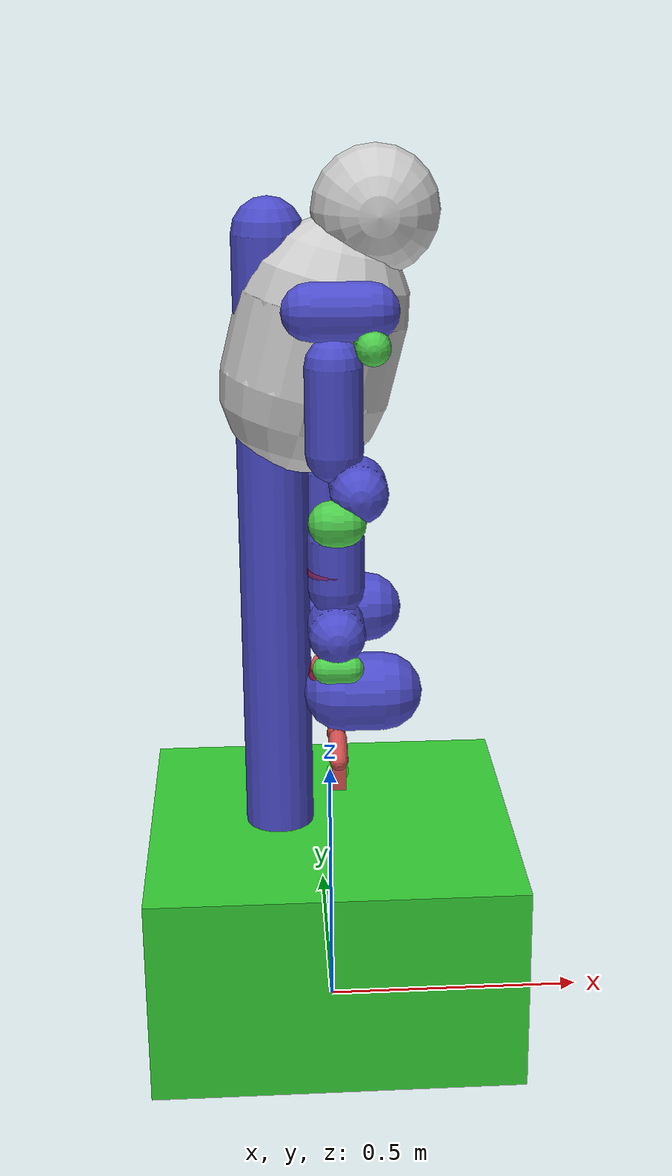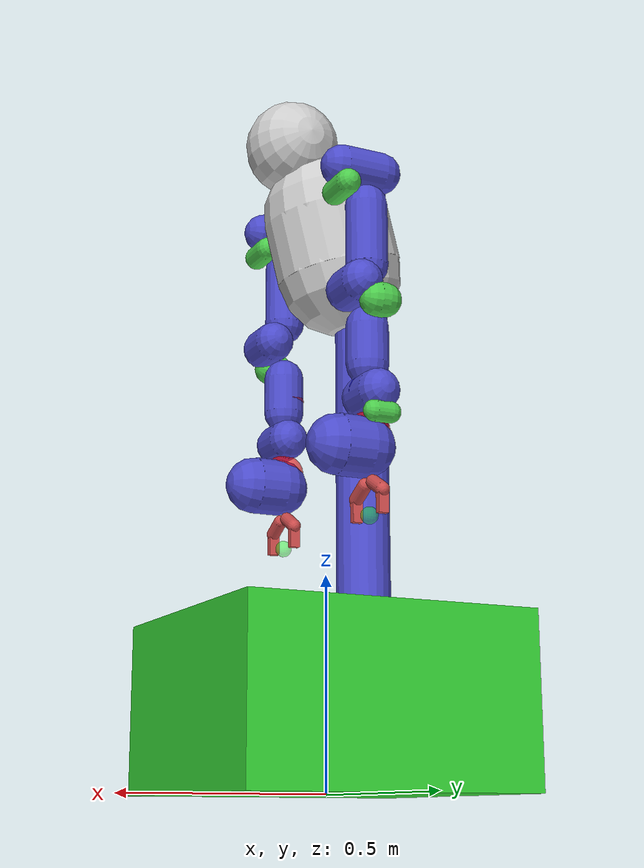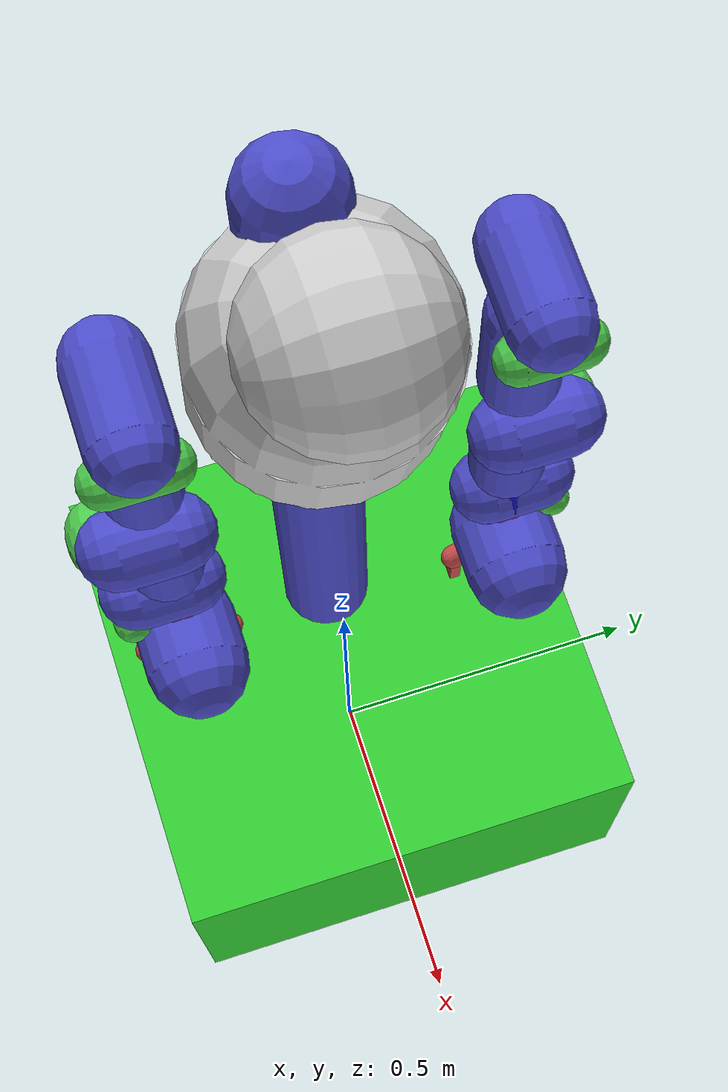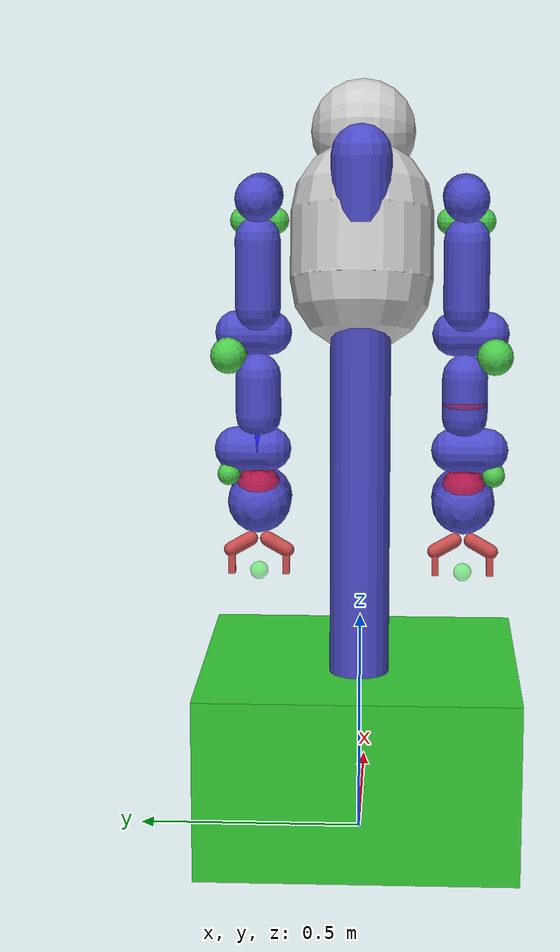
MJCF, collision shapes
<mujoco model="ffw_bg2">
  <compiler angle="radian" meshdir="assets" autolimits="true"/>

  <option integrator="Euler"
          cone="elliptic"
          timestep="0.002"
          solver="Newton"
          iterations="50"
          ls_iterations="20"/>

  <!--
    Default classes:
    1) "robot" for main body joints
    2) "hand" for the gripper joints
    3) "slider" specifically for the linear slide joint
  -->
  <default>

    <geom margin="0.30" gap="0.0" />

    <!-- Robot default -->
    <default class="robot">
      <!-- Increase armature or damping if you want more stability -->
      <joint range="-3.14 3.14" armature="0.5" damping="100.0" />
      <position kp="3000" forcerange="-200.0 200.0" ctrlrange="-3.14 3.14"/>
    </default>

    <!-- Hand (gripper) default -->
    <default class="gripper">
      <joint armature="0.1" damping="10.0"/>
      <position kp="1000" forcerange="-100 100"/>
    </default>

    <!-- Slider default (for the lift_joint) -->
    <default class="slider">
      <!--
        You can tune armature/damping further for the slide if necessary.
        'range' below sets the permissible linear travel.
      -->
      <joint type="slide" range="-0.5 0.0" armature="10.0" damping="1000.0" frictionloss="100.0" />
      <position kp="10000" forcerange="-1000 1000" ctrlrange="-0.5 0.0"/>
    </default>
  </default>

  <!-- Assets -->
  <asset>
    <mesh name="base_mobile_assy" file="ffw_bg2/base_mobile_assy.stl" scale="0.001 0.001 0.001"/>
    <mesh name="body_arm_assy" file="ffw_bg2/body_arm_assy.stl" scale="0.001 0.001 0.001"/>
    <mesh name="head_link1" file="ffw_bg2/head_link1.stl" scale="0.001 0.001 0.001"/>
    <mesh name="head_link2" file="ffw_bg2/head_link2.stl" scale="0.001 0.001 0.001"/>
    <mesh name="arm_l_link1" file="ffw_bg2/arm_l_link1.stl" scale="0.001 0.001 0.001"/>
    <mesh name="arm_l_link2" file="ffw_bg2/arm_l_link2.stl" scale="0.001 0.001 0.001"/>
    <mesh name="arm_l_link3" file="ffw_bg2/arm_l_link3.stl" scale="0.001 0.001 0.001"/>
    <mesh name="arm_l_link4" file="ffw_bg2/arm_l_link4.stl" scale="0.001 0.001 0.001"/>
    <mesh name="arm_l_link5" file="ffw_bg2/arm_l_link5.stl" scale="0.001 0.001 0.001"/>
    <mesh name="arm_l_link6" file="ffw_bg2/arm_l_link6.stl" scale="0.001 0.001 0.001"/>
    <mesh name="arm_l_link7" file="ffw_bg2/arm_l_link7.stl" scale="0.001 0.001 0.001"/>
    <mesh name="arm_r_link1" file="ffw_bg2/arm_r_link1.stl" scale="0.001 0.001 0.001"/>
    <mesh name="arm_r_link2" file="ffw_bg2/arm_r_link2.stl" scale="0.001 0.001 0.001"/>
    <mesh name="arm_r_link3" file="ffw_bg2/arm_r_link3.stl" scale="0.001 0.001 0.001"/>
    <mesh name="arm_r_link4" file="ffw_bg2/arm_r_link4.stl" scale="0.001 0.001 0.001"/>
    <mesh name="arm_r_link5" file="ffw_bg2/arm_r_link5.stl" scale="0.001 0.001 0.001"/>
    <mesh name="arm_r_link6" file="ffw_bg2/arm_r_link6.stl" scale="0.001 0.001 0.001"/>
    <mesh name="arm_r_link7" file="ffw_bg2/arm_r_link7.stl" scale="0.001 0.001 0.001"/>
    <mesh name="base" file="rh_p12_rn/base.stl" scale="0.001 0.001 0.001"/>
    <mesh name="r1" file="rh_p12_rn/r1.stl" scale="0.001 0.001 0.001"/>
    <mesh name="r2" file="rh_p12_rn/r2.stl" scale="0.001 0.001 0.001"/>
    <mesh name="l1" file="rh_p12_rn/l1.stl" scale="0.001 0.001 0.001"/>
    <mesh name="l2" file="rh_p12_rn/l2.stl" scale="0.001 0.001 0.001"/>
  </asset>

  <keyframe>
    <!-- Default pose: lift_joint at mid-height (0.125 out of 0-0.25 range) -->
    <key name="home" qpos=" 0.0 0.0 0.0 0.0 0.0 0.0 0.0 0.0 0.0 0.0 0.0 0.0 0.0 0.0 0.0 0.0 0.0 0.0 0.0 "/>
  </keyframe>

  <keyframe>
    <key name="free_hand" qpos=" -1.57 0.0 0.0 0.0 0.0 0.0 0.0 0.0 -1.57 0.0 0.0 0.0 0.0 0.0 0.0 0.0 0.0 0.0 0.0 "/>
  </keyframe>

  <worldbody>
    <geom type="mesh" rgba="0.2 0.2 0.2 0.5" mesh="base_mobile_assy" contype="0" conaffinity="0"/>
    <body name="pole" pos="-0.0984306 0 0.9313797">
    <geom type="capsule"
        pos="-0.0 0 0.0"  size="0.065 0.60" rgba="0.3 0.3 0.8 0.6" contype="1" conaffinity="376"/>
    </body>

    <body name="drive" pos="0 0 0.2">
    <geom type="box" size="0.35 0.35 0.2" rgba="0.2 0.8 0.2 0.5" contype="1" conaffinity="376"/>
    </body>

    <!-- arm_base_link with separate "slider" default class -->
    <body name="arm_base_link" pos="0.0055 0 1.4316">
      <!-- Joint with slider class -->
      <inertial pos="-0.0460732 -2.28101e-05 -0.0270208" quat="0.295276 0.295528 -0.642514 0.642379" mass="8.72176" diaginertia="0.106112 0.0836519 0.0576143"/>
      <joint name="lift_joint" class="slider" pos="0 0 0" axis="0 0 1" type="slide"/>
      <geom type="mesh" rgba="1 1 1 1" mesh="body_arm_assy" contype="0" conaffinity="0"/>
      <geom type="capsule" size="0.155 0.075" pos="-0.025 0 -0.1" quat="0.9921977 0 0.1246747 0" rgba="0.8 0.8 0.8 0.2" contype="1" conaffinity="376"/>

      <!-- Head -->
      <body name="head_link1" pos="0.0494878 0 0.102123">
        <inertial pos="-0.00732988 0 0.0434363" quat="0.688381 -0.161651 -0.161651 0.688381" mass="0.139473" diaginertia="6.54445e-05 5.99779e-05 4.75755e-05"/>
        <joint name="head_joint1" class="robot" pos="0 0 0" axis="0 1 0" range="-0.2317 0.6951"/>
        <geom type="mesh" rgba="0.2 0.2 0.2 1.0" mesh="head_link1" contype="0" conaffinity="0"/>

        <body name="head_link2" pos="0.0365694 0 0.0563797">
          <inertial pos="0.00877907 -8.40392e-05 0.0425432" quat="0.653422 0.653616 0.269949 -0.270098" mass="0.145078" diaginertia="0.000186994 0.000179978 2.28387e-05"/>
          <joint name="head_joint2" class="robot" pos="0 0 0" axis="0 0 1" range="-0.6 0.6"/>
          <geom type="mesh" rgba="1 1 1 0.4" mesh="head_link2" contype="0" conaffinity="0"/>
          <geom type="sphere" size="0.115" pos="0.00 0 -0.02" quat="0.7071068 0.7071068 0 0" rgba="0.8 0.8 0.8 0.3" contype="1" conaffinity="376"/>

        </body>
      </body>

      <!-- Left arm -->
      <body name="arm_l_link1" pos="0 0.1045 0">
        <inertial pos="0.0162539 0.115097 0.000116015" quat="-0.229615 0.677745 0.212586 0.665391" mass="1.93395" diaginertia="0.00305502 0.0027509 0.00221577"/>
        <joint name="arm_l_joint1" class="robot" pos="0 0 0" axis="0 1 0" range="-2.35619 0.78539"/>
        <geom type="mesh" rgba="0.2 0.2 0.2 1" mesh="arm_l_link1" contype="0" conaffinity="0"/>
        <geom type="capsule" size="0.05 0.05" pos="0.0125 0.12 0" quat="0.707107 0 0.707107 0"
        rgba="0.3 0.3 0.8 0.5" contype="2" conaffinity="368"/>

        <body name="arm_l_link2" pos="0 0.123 0">
          <inertial pos="0.00909681 -0.000105504 -0.144033" quat="0.692968 0.108459 0.106285 0.704795" mass="2.12414" diaginertia="0.0108537 0.0106882 0.00241736"/>
          <joint name="arm_l_joint2" class="robot" pos="0 0 0" axis="1 0 0" range="0.0 3.14"/>
          <geom type="mesh" rgba="0.2 0.2 0.2 1" mesh="arm_l_link2" contype="0" conaffinity="0"/>
          <geom type="capsule" size="0.05 0.075" pos="0.0 0.0 -0.165" quat="1 0 0 0"
          rgba="0.3 0.3 0.8 0.3" contype="2" conaffinity="368"/>

          <geom type="capsule" size="0.03 0.035" pos="0.065 0.0 -0.055" quat="0.707107 0.707107 0 0"
          rgba="0.3 0.8 0.3 0.3" contype="2" conaffinity="368"/>

          <body name="arm_l_link3" pos="0 0 -0.165">
            <inertial pos="2.51092e-05 0.0179472 -0.108757" quat="0.894344 0.447371 -0.000598238 0.00281074" mass="1.40774" diaginertia="0.00193356 0.00173187 0.00129028"/>
            <joint name="arm_l_joint3" class="robot" pos="0 0 0" axis="0 0 1" range="-1.57 1.57"/>
            <geom type="mesh" rgba="0.2 0.2 0.2 1" mesh="arm_l_link3" contype="0" conaffinity="0"/>
            <geom type="capsule" size="0.05 0.035" pos="0.04 0.0125 -0.135" quat="0.707107 0.707107 0 0"
            rgba="0.3 0.3 0.8 0.3" contype="2" conaffinity="368"/>

            <site name="left_UA_site" type="sphere" size="0.03" pos="0.0 0 -0.275" quat="1 0 0 0" rgba="1.0 0.0 1.0 0.6"/>

            <body name="arm_l_link4" pos="0.041004 0 -0.135">
              <inertial pos="-4.39703e-05 0.00978704 -0.137888" quat="0.984403 -0.175803 -0.00125587 -0.00649472" mass="1.51314" diaginertia="0.00636289 0.00628017 0.00133396"/>
              <joint name="arm_l_joint4" class="robot" pos="0 0 0" axis="0 1 0" range="-2.61 1.047"/>
              <geom type="mesh" rgba="0.2 0.2 0.2 1" mesh="arm_l_link4" contype="0" conaffinity="0"/>
              <geom type="capsule" size="0.05 0.045" pos="-0.04 0.0 -0.135" quat="1 0 0 0"
              rgba="0.3 0.3 0.8 0.3" contype="8" conaffinity="337"/>

              <geom type="capsule" size="0.04 0.01" pos="-0.04 0.065 -0.045 " quat="0.707107 0 0.707107 0"
              rgba="0.3 0.8 0.3 0.3" contype="8" conaffinity="337"/>

              <body name="arm_l_link5" pos="-0.041004 0 -0.1489">
                <inertial pos="-4.95306e-05 0.0187957 -0.0983639" quat="0.838675 0.544584 0.00138926 -0.00713051" mass="1.34419" diaginertia="0.00169917 0.00156903 0.00116769"/>
                <joint name="arm_l_joint5" class="robot" pos="0 0 0" axis="0 0 1" range="-1.57 1.57"/>
                <geom type="mesh" rgba="0.2 0.2 0.2 1" mesh="arm_l_link5" contype="0" conaffinity="0"/>
                <geom type="capsule" size="0.05 0.035" pos="0.0 0.0125 -0.105" quat="0.707107 0.707107 0 0"
                rgba="0.3 0.3 0.8 0.3" contype="32" conaffinity="343"/>

                <body name="arm_l_link6" pos="0 0 -0.1041">
                  <inertial pos="0.00038449 0.0194298 -0.0639456" quat="0.658925 -0.254422 0.24959 0.662414" mass="0.636234" diaginertia="0.00155561 0.00138897 0.00049676"/>
                  <joint name="arm_l_joint6" class="robot" pos="0 0 0" axis="0 1 0" range="-1.57 1.57"/>
                  <geom type="mesh" rgba="0.2 0.2 0.2 1" mesh="arm_l_link6" contype="0" conaffinity="0"/>
                  <geom type="capsule" size="0.025 0.02" pos="-0.0 0.065 -0.055" quat="0.707107 0 0.707107 0"
                    rgba="0.3 0.8 0.3 0.3" contype="32" conaffinity="343"/>

                  <site name="left_6_site" type="sphere" size="0.05" pos="0 0 0.0" quat="1 0 0 0" rgba="0.0 0.0 1.0 0.6"/>

                  <body name="arm_l_link7" pos="0 0 -0.0885">
                    <inertial pos="-0.00237181 0.00249345 -0.0980007" quat="0.707876 -0.0176581 -0.0477307 0.704501" mass="0.384359" diaginertia="0.00141022 0.00125626 0.000287964"/>
                    <joint name="arm_l_joint7" class="robot" pos="0 0 0" axis="1 0 0" range="-1.8201 1.5804"/>
                    <geom type="mesh" rgba="0.2 0.2 0.2 1" mesh="arm_l_link7" contype="0" conaffinity="0"/>
                    <geom type="capsule" size="0.07 0.035" pos="0.045 0.0 -0.035" quat="0.707107 0 0.707107 0"
                    rgba="0.3 0.3 0.8 0.3" contype="32" conaffinity="343"/>
                    <!-- Left hand base -->

                    <site name="left_7_site" type="sphere" size="0.05" pos="0 0 0.0" quat="1 0 0 0" rgba="1.0 0.0 0.0 0.6"/>

                    <!-- LEFT GRIPPER TCP with full XYZ frame -->
                    <site name="left_gripper_site" type="sphere" size="0.02" pos="0 0 -0.190" quat="0.7071068 0 0.7071068 0" rgba="0.0 1.0 0.0 0.4"/>

                    <!-- Left hand gripper -->
                    <body name="gripper_l_rh_p12_rn_r1" pos="0 0.008 -0.126" quat="0 0 1 0">
                      <inertial pos="0 0.034 0.004" mass="0.068" diaginertia="1e-06 1e-06 1e-06"/>
                      <joint name="gripper_l_joint1" class="gripper" pos="0 0 0" axis="1 0 0" range="0 1.125"/>
                      <geom type="mesh" rgba="0.2 0.2 0.2 1" mesh="r1" contype="0" conaffinity="0"/>
                      <geom type="capsule" size="0.0165 0.025" pos="0.00 0.0325 0.004" quat="-0.866 0.5 0.0 0"
                      rgba="0.8 0.3 0.3 0.3" contype="32" conaffinity="343"/>

                      <body name="gripper_l_rh_p12_rn_r2" pos="0 0.0493634 0.0285">
                        <inertial pos="0 0.006 0.011" mass="0.022" diaginertia="1e-06 1e-06 1e-06"/>
                        <joint name="gripper_l_joint2" class="gripper" pos="0 0 0" axis="-1 0 0" range="0 1.125"/>
                        <geom type="mesh" rgba="0.2 0.2 0.2 1" mesh="r2" contype="0" conaffinity="0"/>
                        <geom type="box" size="0.0125 0.0075 0.024" pos="0.0 0.0035 0.0175" quat="1 0 0.0 0"
                        rgba="0.8 0.3 0.3 0.3" contype="32" conaffinity="343"/>

                      </body>
                    </body>
                    <body name="gripper_l_rh_p12_rn_l1" pos="0 -0.008 -0.126" quat="0 0 1 0">
                      <inertial pos="0 -0.034 0.004" mass="0.068" diaginertia="1e-06 1e-06 1e-06"/>
                      <joint name="gripper_l_joint3" class="gripper" pos="0 0 0" axis="-1 0 0" range="0 1.125"/>
                      <geom type="mesh" rgba="0.2 0.2 0.2 1" mesh="l1" contype="0" conaffinity="0"/>
                      <geom type="capsule" size="0.0165 0.025" pos="0.00 -0.0325 0.004" quat="0.866 0.5 0.0 0"
                      rgba="0.8 0.3 0.3 0.3" contype="32" conaffinity="343"/>

                      <body name="gripper_l_rh_p12_rn_l2" pos="0 -0.0493634 0.0285">
                        <inertial pos="0 -0.006 0.011" mass="0.022" diaginertia="1e-06 1e-06 1e-06"/>
                        <joint name="gripper_l_joint4" class="gripper" pos="0 0 0" axis="1 0 0" range="0 1.125"/>
                        <geom type="mesh" rgba="0.2 0.2 0.2 1" mesh="l2" contype="0" conaffinity="0"/>
                        <geom type="box" size="0.0125 0.0075 0.024" pos="0.0 -0.0035 0.0175" quat="1 0 0.0 0"
                        rgba="0.8 0.3 0.3 0.3" contype="32" conaffinity="343"/>

                      </body>
                    </body>
                  </body>
                </body>
              </body>
            </body>
          </body>
        </body>
      </body>

      <!-- Right arm -->
      <body name="arm_r_link1" pos="0 -0.1045 0">
        <inertial pos="0.0162454 -0.115083 -0.000116015" quat="0.212043 0.665609 -0.229062 0.677889" mass="1.93395" diaginertia="0.00305635 0.00275332 0.00221466"/>
        <joint name="arm_r_joint1" class="robot" pos="0 0 0" axis="0 1 0" range="-2.35619 0.78539"/>
        <geom type="mesh" rgba="0.2 0.2 0.2 1" mesh="arm_r_link1" contype="0" conaffinity="0"/>
        <geom type="capsule" size="0.05 0.05" pos="0.0125 -0.12 0" quat="0.707107 0 0.707107 0"
              rgba="0.3 0.3 0.8 0.5" contype="4" conaffinity="360"/>

        <body name="arm_r_link2" pos="0 -0.123 0">
          <inertial pos="0.00904096 0.000105802 -0.144033" quat="0.707129 0.105833 0.108702 0.690617" mass="2.12414" diaginertia="0.0108559 0.0106863 0.00242145"/>
          <joint name="arm_r_joint2" class="robot" pos="0 0 0" axis="1 0 0" range="-3.14 0.0"/>
          <geom type="mesh" rgba="0.2 0.2 0.2 1" mesh="arm_r_link2" contype="0" conaffinity="0"/>
          <geom type="capsule" size="0.05 0.075" pos="0.0 0.0 -0.165" quat="1 0 0 0"
                rgba="0.3 0.3 0.8 0.3" contype="4" conaffinity="360"/>

          <geom type="capsule" size="0.03 0.035" pos="0.065 0.0 -0.055" quat="0.707107 0.707107 0 0"
          rgba="0.3 0.8 0.3 0.3" contype="4" conaffinity="360"/>

          <body name="arm_r_link3" pos="0 0 -0.165">
            <inertial pos="-2.51092e-05 -0.0179472 -0.108765" quat="0.447823 0.894113 0.00400928 -0.000680335" mass="1.40774" diaginertia="0.00193273 0.0017314 0.00128994"/>
            <joint name="arm_r_joint3" class="robot" pos="0 0 0" axis="0 0 1" range="-1.57 1.57"/>
            <geom type="mesh" rgba="0.2 0.2 0.2 1" mesh="arm_r_link3" contype="0" conaffinity="0"/>r
            <geom type="capsule" size="0.05 0.035" pos="0.04 -0.0125 -0.135" quat="0.707107 0.707107 0 0"
                  rgba="0.3 0.3 0.8 0.3" contype="4" conaffinity="360"/>

            <site name="right_3_site" type="sphere" size="0.05" pos="0 0 0.0" quat="1 0 0 0" rgba="0.0 0.0 1.0 0.6"/>

            <body name="arm_r_link4" pos="0.041004 0 -0.135">
              <inertial pos="4.39703e-05 -0.00978736 -0.137888" quat="0.984402 0.175809 0.00125565 -0.00649329" mass="1.51314" diaginertia="0.00636295 0.00628021 0.00133398"/>
              <joint name="arm_r_joint4" class="robot" pos="0 0 0" axis="0 1 0" range="-2.61 1.047"/>
              <geom type="mesh" rgba="0.2 0.2 0.2 1" mesh="arm_r_link4" contype="0" conaffinity="0"/>
              <geom type="capsule" size="0.05 0.045" pos="-0.04 0.0 -0.135" quat="1 0 0 0"
                    rgba="0.3 0.3 0.8 0.3" contype="16" conaffinity="297"/>

              <geom type="capsule" size="0.04 0.01" pos="-0.04 -0.065 -0.045 " quat="0.707107 0 0.707107 0"
              rgba="0.3 0.8 0.3 0.3" contype="16" conaffinity="297"/>

              <body name="arm_r_link5" pos="-0.041004 0 -0.1489">
                <inertial pos="-2.62962e-05 -0.0187957 -0.0983871" quat="0.546043 0.837751 0.00318354 -0.000761107" mass="1.34419" diaginertia="0.00169762 0.00156986 0.00116911"/>
                <joint name="arm_r_joint5" class="robot" pos="0 0 0" axis="0 0 1" range="-1.57 1.57"/>
                <geom type="mesh" rgba="0.2 0.2 0.2 1" mesh="arm_r_link5" contype="0" conaffinity="0"/>
                <geom type="capsule" size="0.05 0.035" pos="0.0 -0.0125 -0.105" quat="0.707107 0.707107 0 0"
                      rgba="0.3 0.3 0.8 0.3" contype="64" conaffinity="303"/>

                <site name="right_5_site" type="sphere" size="0.05" pos="0 0 0.0" quat="1 0 0 0" rgba="1.0 0.0 0.0 0.4"/>

                <body name="arm_r_link6" pos="0 0 -0.1041">
                  <inertial pos="0.000339839 -0.0194304 -0.0639459" quat="0.662489 0.249825 -0.2542 0.658846" mass="0.636234" diaginertia="0.00155564 0.00138901 0.000496769"/>
                  <joint name="arm_r_joint6" class="robot" pos="0 0 0" axis="0 1 0" range="-1.57 1.57"/>
                  <geom type="mesh" rgba="1.0 0.2 0.2 1" mesh="arm_r_link6" contype="0" conaffinity="0"/>

                  <geom type="capsule" size="0.025 0.02" pos="-0.0 -0.065 -0.055" quat="0.707107 0 0.707107 0"
                    rgba="0.3 0.8 0.3 0.3" contype="64" conaffinity="303"/>

                  <body name="arm_r_link7" pos="0 0 -0.0885">
                    <inertial pos="-0.00242011 -0.00201564 -0.0911446" quat="0.703942 -0.0528198 -0.0236914 0.707894" mass="0.384359" diaginertia="0.00125471 0.0011001 0.000310982"/>
                    <joint name="arm_r_joint7" class="robot" pos="0 0 0" axis="1 0 0" range="-1.5804 1.8201"/>
                    <geom type="mesh" rgba="0.2 0.2 0.2 1" mesh="arm_r_link7" contype="0" conaffinity="0"/>
                    <geom type="capsule" size="0.07 0.035" pos="0.047 0.0 -0.035" quat="0.707107 0 0.707107 0"
                          rgba="0.3 0.3 0.8 0.3" contype="64" conaffinity="303"/>

                    <site name="right_7_site" type="sphere" size="0.05" pos="0 0 0.0" quat="1 0 0 0" rgba="1.0 0.0 0.0 0.6"/>

                    <!-- RIGHT GRIPPER TCP -->

                    <site name="right_gripper_site" type="sphere" size="0.02" pos="0 0 -0.190" quat="0.7071068 0 0.7071068 0" rgba="0.0 1.0 0.0 0.4"/>

                    <!-- Right hand base -->
                    <!-- Right hand gripper -->
                    <body name="gripper_r_rh_p12_rn_r1" pos="0 0.008 -0.126" quat="0 0 1 0">
                      <inertial pos="0 0.034 0.004" mass="0.068" diaginertia="1e-06 1e-06 1e-06"/>
                      <joint name="gripper_r_joint1" class="gripper" pos="0 0 0" axis="1 0 0" range="0 1.125"/>
                      <geom type="mesh" rgba="0.2 0.2 0.2 1" mesh="r1" contype="0" conaffinity="0" />
                      <geom type="capsule" size="0.0165 0.025" pos="0.00 0.0325 0.004" quat="-0.866 0.5 0.0 0"
                            rgba="0.8 0.3 0.3 0.3" contype="64" conaffinity="303"/>

                      <body name="gripper_r_rh_p12_rn_r2" pos="0 0.0493634 0.0285">
                        <inertial pos="0 0.006 0.011" mass="0.022" diaginertia="1e-06 1e-06 1e-06"/>
                        <joint name="gripper_r_joint2" class="gripper" pos="0 0 0" axis="-1 0 0" range="0 1.125"/>
                        <geom type="mesh" rgba="0.2 0.2 0.2 1" mesh="r2" contype="0" conaffinity="0"/>
                        <geom type="box" size="0.0125 0.0075 0.024" pos="0.0 0.0035 0.0175" quat="1 0 0.0 0"
                              rgba="0.8 0.3 0.3 0.3" contype="64" conaffinity="303"/>
                      </body>

                    </body>
                    <body name="gripper_r_rh_p12_rn_l1" pos="0 -0.008 -0.126" quat="0 0 1 0">
                      <inertial pos="0 -0.034 0.004" mass="0.068" diaginertia="1e-06 1e-06 1e-06"/>
                      <joint name="gripper_r_joint3" class="gripper" pos="0 0 0" axis="-1 0 0" range="0 1.125"/>
                      <geom type="mesh" rgba="0.2 0.2 0.2 1" mesh="l1" contype="0" conaffinity="0"/>
                      <geom type="capsule" size="0.0165 0.025" pos="0.00 -0.0325 0.004" quat="0.866 0.5 0.0 0"
                            rgba="0.8 0.3 0.3 0.3" contype="64" conaffinity="303"/>

                      <body name="gripper_r_rh_p12_rn_l2" pos="0 -0.0493634 0.0285">
                        <inertial pos="0 -0.006 0.011" mass="0.022" diaginertia="1e-06 1e-06 1e-06"/>
                        <joint name="gripper_r_joint4" class="gripper" pos="0 0 0" axis="1 0 0" range="0 1.125"/>
                        <geom type="mesh" rgba="0.2 0.2 0.2 1" mesh="l2" contype="0" conaffinity="0"/>
                        <geom type="box" size="0.0125 0.0075 0.024" pos="0.0 -0.0035 0.0175" quat="1 0 0.0 0"
                              rgba="0.8 0.3 0.3 0.3" contype="64" conaffinity="303"/>
                      </body>

                    </body>
                  </body>
                </body>
              </body>
            </body>
          </body>
        </body>
      </body>
    </body>
  </worldbody>

  <!-- Exclude contact information -->
  <contact>

  </contact>

  <equality>
    <!-- Right gripper: slave joints mimic gripper_r_joint1 with gearing = 1 -->
    <joint joint1="gripper_r_joint2" joint2="gripper_r_joint1" polycoef="0 1 0 0 0"/>
    <joint joint1="gripper_r_joint3" joint2="gripper_r_joint1" polycoef="0 1 0 0 0"/>
    <joint joint1="gripper_r_joint4" joint2="gripper_r_joint1" polycoef="0 1 0 0 0"/>

    <!-- Left gripper: slave joints mimic gripper_l_joint1 with gearing = 1 -->
    <joint joint1="gripper_l_joint2" joint2="gripper_l_joint1" polycoef="0 1 0 0 0"/>
    <joint joint1="gripper_l_joint3" joint2="gripper_l_joint1" polycoef="0 1 0 0 0"/>
    <joint joint1="gripper_l_joint4" joint2="gripper_l_joint1" polycoef="0 1 0 0 0"/>
  </equality>

  <!-- Actuators (position type for each joint) -->
  <actuator>
    <!--
      Right arm joints:
    -->
    <position name="1RA_actuator_arm_r_joint1" joint="arm_r_joint1" class="robot" ctrlrange="-2.35619 0.78539"/>
    <position name="2RA_actuator_arm_r_joint2" joint="arm_r_joint2" class="robot" ctrlrange="-3.14 0.0"/>
    <position name="3RA_actuator_arm_r_joint3" joint="arm_r_joint3" class="robot" ctrlrange="-1.57 1.57"/>
    <position name="4RA_actuator_arm_r_joint4" joint="arm_r_joint4" class="robot" ctrlrange="-2.61 1.047"/>
    <position name="5RA_actuator_arm_r_joint5" joint="arm_r_joint5" class="robot" ctrlrange="-1.57 1.57"/>
    <position name="6RA_actuator_arm_r_joint6" joint="arm_r_joint6" class="robot" ctrlrange="-1.57 1.57"/>
    <position name="7RA_actuator_arm_r_joint7" joint="arm_r_joint7" class="robot" ctrlrange="-1.046 1.046"/>

    <position name="1RG_actuator_gripper_r_joint1" joint="gripper_r_joint1" ctrlrange="0.000 1.12500" class="gripper"/>

    <!--
      Left arm joints:
    -->
    <position name="1LA_actuator_arm_l_joint1" joint="arm_l_joint1" class="robot" ctrlrange="-2.35619 0.78539"/>
    <position name="2LA_actuator_arm_l_joint2" joint="arm_l_joint2" class="robot" ctrlrange="0.0 3.14"/>
    <position name="3LA_actuator_arm_l_joint3" joint="arm_l_joint3" class="robot" ctrlrange="-1.57 1.57"/>
    <position name="4LA_actuator_arm_l_joint4" joint="arm_l_joint4" class="robot" ctrlrange="-2.61 1.047"/>
    <position name="5LA_actuator_arm_l_joint5" joint="arm_l_joint5" class="robot" ctrlrange="-1.57 1.57"/>
    <position name="6LA_actuator_arm_l_joint6" joint="arm_l_joint6" class="robot" ctrlrange="-1.57 1.57"/>
    <position name="7LA_actuator_arm_l_joint7" joint="arm_l_joint7" class="robot" ctrlrange="-1.046 1.046"/>

    <position name="1LG_actuator_gripper_l_joint1" joint="gripper_l_joint1" ctrlrange="0.000 1.1250" class="gripper"/>

     <!--
      Slider: lift_joint
    -->
    <position name="actuator_lift_joint" joint="lift_joint" class="slider" ctrlrange="-0.5 0.0"/>

    <!--
      Head joints:    -->
    <position name="actuator_head_joint1" joint="head_joint1" class="robot" ctrlrange="-0.2317 0.6951"/>
    <position name="actuator_head_joint2" joint="head_joint2" class="robot" ctrlrange="-0.6 0.6"/>
  </actuator>

  <sensor>
    <actuatorfrc name="sensor_s_head1" actuator="actuator_head_joint1"/>
    <actuatorfrc name="sensor_s_head2" actuator="actuator_head_joint2"/>
    <actuatorfrc name="sensor_s_1RA" actuator="1RA_actuator_arm_r_joint1"/>
    <actuatorfrc name="sensor_s_2RA" actuator="2RA_actuator_arm_r_joint2"/>
    <actuatorfrc name="sensor_s_3RA" actuator="3RA_actuator_arm_r_joint3"/>
    <actuatorfrc name="sensor_s_4RA" actuator="4RA_actuator_arm_r_joint4"/>
    <actuatorfrc name="sensor_s_5RA" actuator="5RA_actuator_arm_r_joint5"/>
    <actuatorfrc name="sensor_s_6RA" actuator="6RA_actuator_arm_r_joint6"/>
    <actuatorfrc name="sensor_s_7RA" actuator="7RA_actuator_arm_r_joint7"/>
    <actuatorfrc name="sensor_s_1RG" actuator="1RG_actuator_gripper_r_joint1"/>
    <actuatorfrc name="sensor_s_1LA" actuator="1LA_actuator_arm_l_joint1"/>
    <actuatorfrc name="sensor_s_2LA" actuator="2LA_actuator_arm_l_joint2"/>
    <actuatorfrc name="sensor_s_3LA" actuator="3LA_actuator_arm_l_joint3"/>
    <actuatorfrc name="sensor_s_4LA" actuator="4LA_actuator_arm_l_joint4"/>
    <actuatorfrc name="sensor_s_5LA" actuator="5LA_actuator_arm_l_joint5"/>
    <actuatorfrc name="sensor_s_6LA" actuator="6LA_actuator_arm_l_joint6"/>
    <actuatorfrc name="sensor_s_7LA" actuator="7LA_actuator_arm_l_joint7"/>
    <actuatorfrc name="sensor_s_1LG" actuator="1LG_actuator_gripper_l_joint1"/>
  </sensor>

</mujoco>
